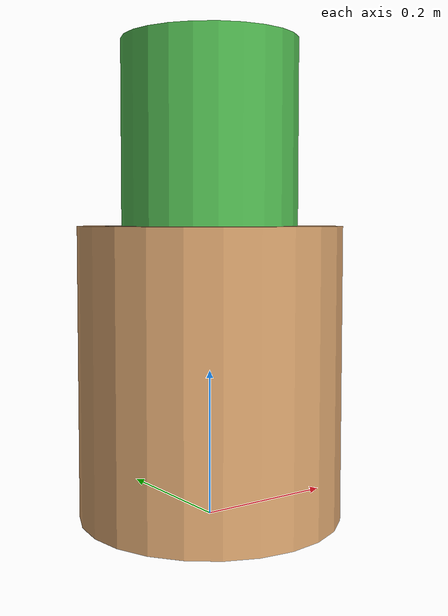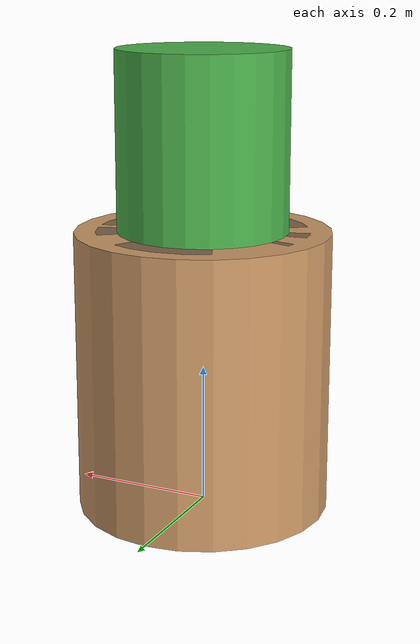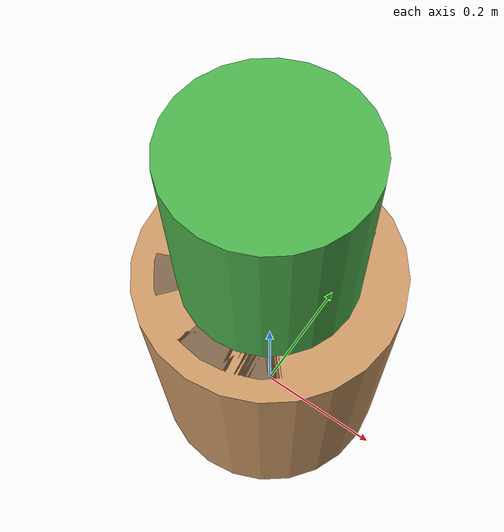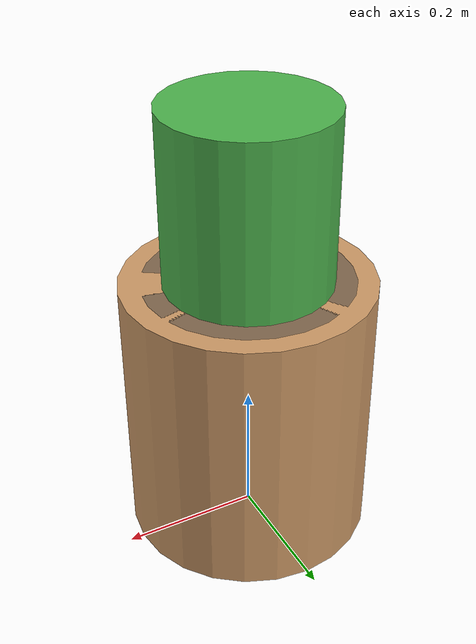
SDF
<?xml version='1.0'?>
<sdf version='1.6'>
  <model name='plant_pot'>
    <static>true</static>
    <link name='pot_link'>
      <collision name='col_pot'>
        <geometry><cylinder><radius>0.18</radius><length>0.4</length></cylinder></geometry>
        <pose>0 0 0.2 0 0 0</pose>
      </collision>
      <visual name='vis_pot'>
        <geometry><cylinder><radius>0.18</radius><length>0.4</length></cylinder></geometry>
        <pose>0 0 0.2 0 0 0</pose>
        <material>
          <ambient>0.7 0.5 0.3 1</ambient>
          <diffuse>0.8 0.6 0.4 1</diffuse>
          <specular>0.2 0.2 0.2 1</specular>
        </material>
      </visual>
      <!-- soil -->
      <collision name='col_soil'>
        <geometry><cylinder><radius>0.15</radius><length>0.1</length></cylinder></geometry>
        <pose>0 0 0.35 0 0 0</pose>
      </collision>
      <visual name='vis_soil'>
        <geometry><cylinder><radius>0.15</radius><length>0.1</length></cylinder></geometry>
        <pose>0 0 0.35 0 0 0</pose>
        <material>
          <ambient>0.4 0.3 0.2 1</ambient>
          <diffuse>0.5 0.4 0.3 1</diffuse>
        </material>
      </visual>
      <!-- plant -->
      <collision name='col_plant'>
        <geometry><cylinder><radius>0.12</radius><length>0.3</length></cylinder></geometry>
        <pose>0 0 0.5 0 0 0</pose>
      </collision>
      <visual name='vis_plant'>
        <geometry><cylinder><radius>0.12</radius><length>0.3</length></cylinder></geometry>
        <pose>0 0 0.5 0 0 0</pose>
        <material>
          <ambient>0.2 0.6 0.2 1</ambient>
          <diffuse>0.3 0.7 0.3 1</diffuse>
        </material>
      </visual>
    </link>
  </model>
</sdf>
